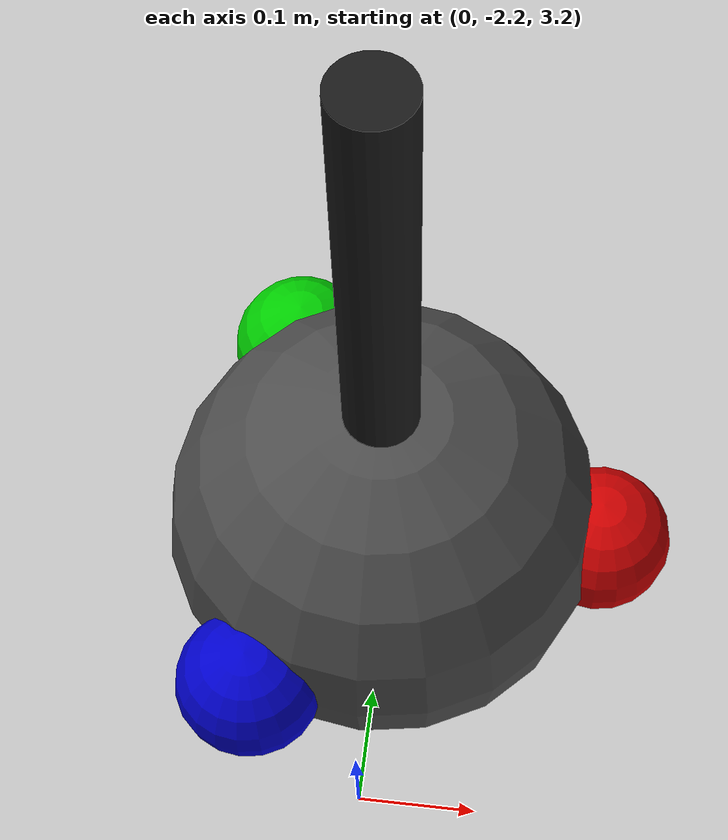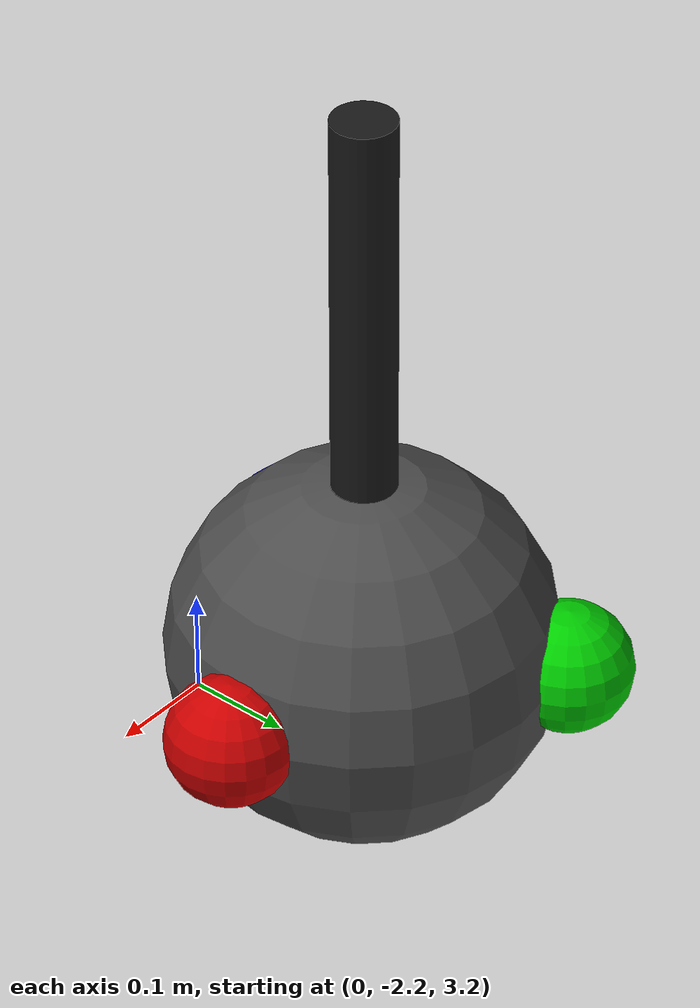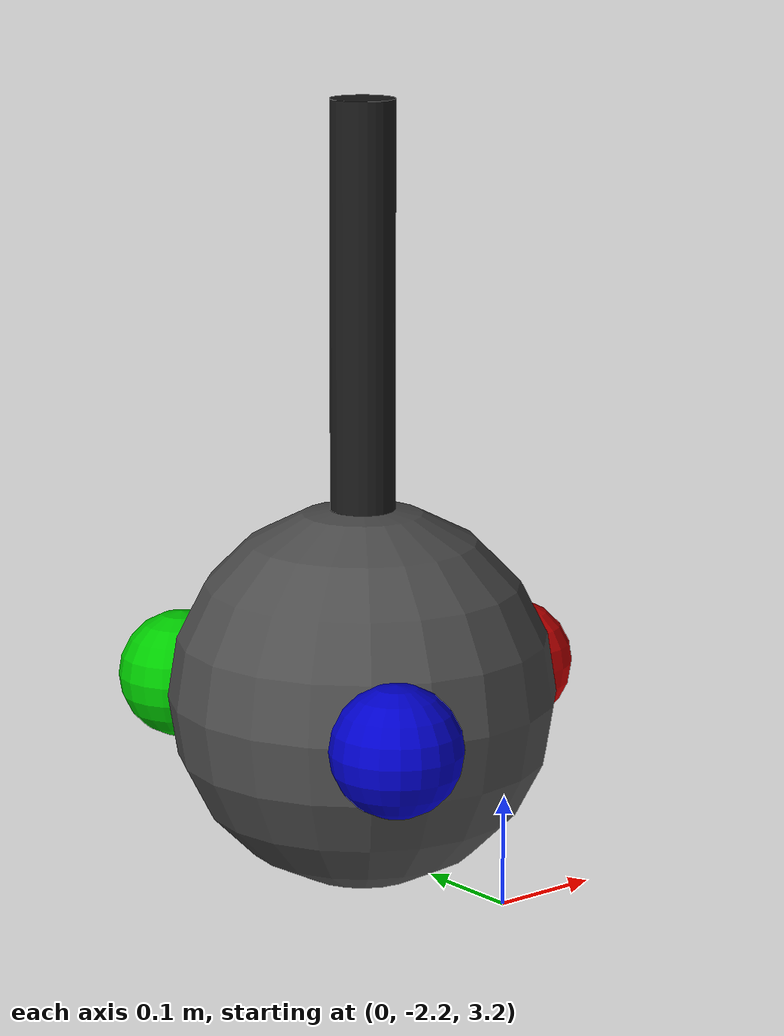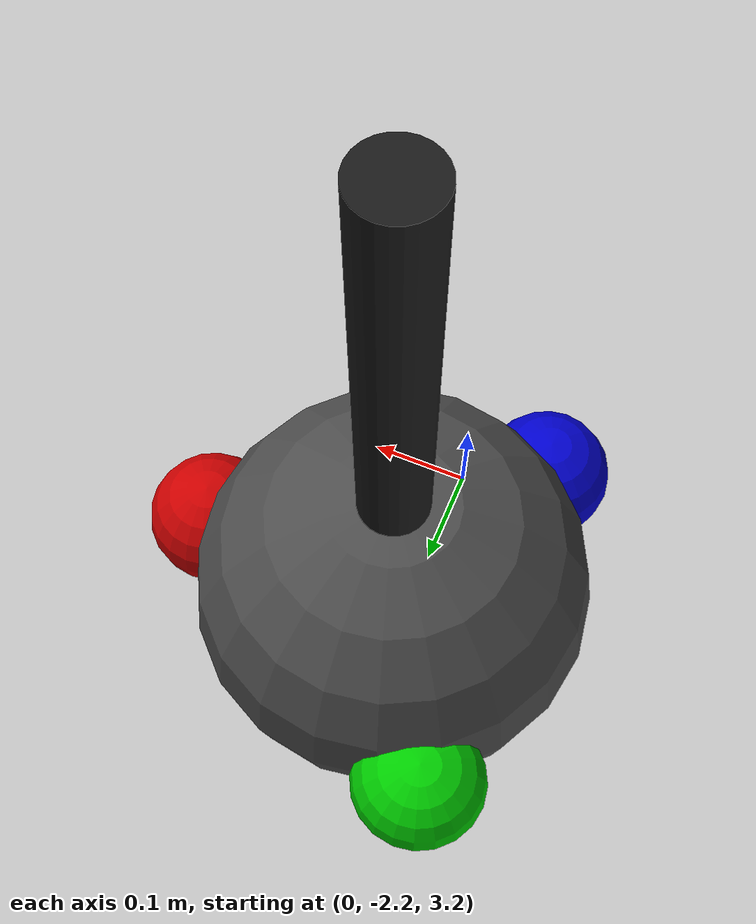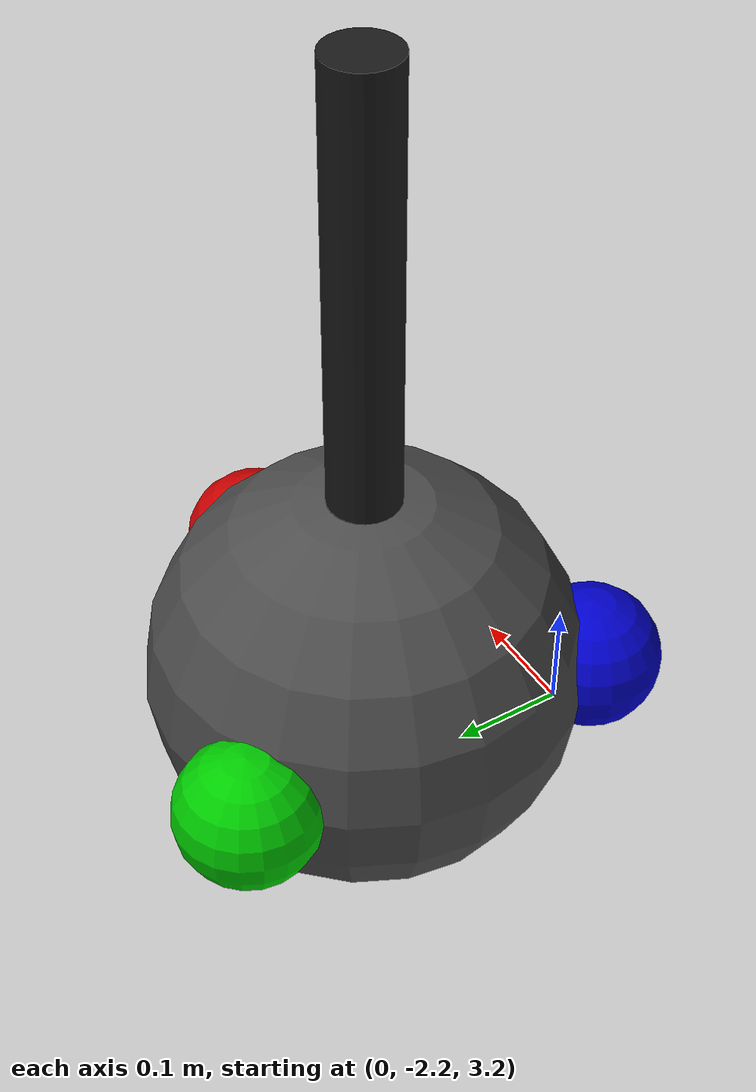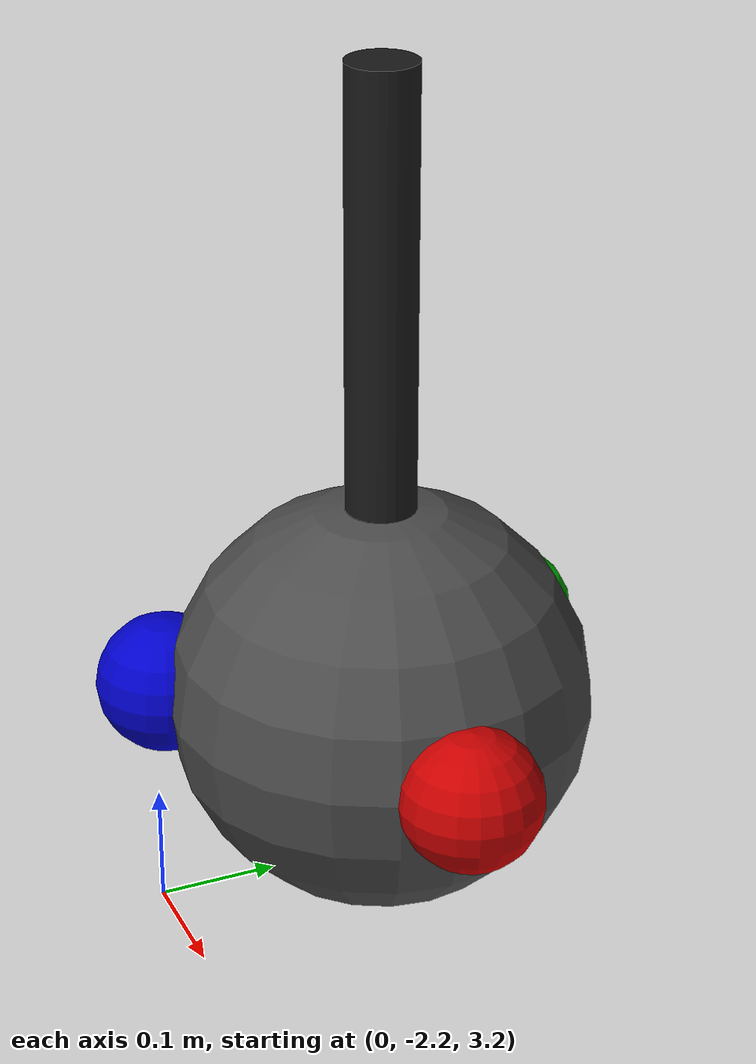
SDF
<sdf version="1.11">
 <world name="dance_party">
  <physics name="1ms" type="ignored">
   <max_step_size>0.001</max_step_size>
   <real_time_factor>1.0</real_time_factor>
  </physics>
  <plugin filename="gz-sim-physics-system" name="gz::sim::systems::Physics"/>
  <plugin filename="gz-sim-sensors-system" name="gz::sim::systems::Sensors">
   <render_engine>ogre2</render_engine>
   <background_color>0.8 0.8 0.8</background_color>
  </plugin>
  <plugin filename="gz-sim-user-commands-system" name="gz::sim::systems::UserCommands"/>
  <plugin filename="gz-sim-scene-broadcaster-system" name="gz::sim::systems::SceneBroadcaster"/>
  <scene>
   <ambient>0.15 0.15 0.18 1</ambient>
   <background>0.25 0.25 0.35 1</background>
   <shadows>true</shadows>
   <sky><time>21</time></sky>
  </scene>
  <light type="directional" name="sun">
   <pose>0 0 10 0 0 0</pose>
   <diffuse>0.2 0.2 0.25 1</diffuse>
   <specular>0.3 0.3 0.3 1</specular>
   <attenuation>
    <range>1000</range>
    <constant>1.0</constant>
    <linear>0.01</linear>
    <quadratic>0.001</quadratic>
   </attenuation>
   <direction>-0.2 0.1 -0.95</direction>
  </light>
  <model name="ground_plane">
   <static>true</static>
   <link name="link">
    <collision name="collision">
     <geometry><plane><normal>0 0 1</normal><size>100 100</size></plane></geometry>
    </collision>
    <visual name="visual">
     <geometry><plane><normal>0 0 1</normal><size>100 100</size></plane></geometry>
     <material>
      <ambient>0.8 0.8 0.8 1</ambient>
      <diffuse>0.8 0.8 0.8 1</diffuse>
      <specular>0.8 0.8 0.8 1</specular>
     </material>
    </visual>
   </link>
  </model>
  <model name="disco_light">
   <pose>0 -2.0 3.0 0 0 0</pose>
   <static>true</static>
   <link name="disco_stand">
    <pose>0 0 0.6 0 0 0</pose>
    <visual name="disco_stand_visual">
     <geometry><cylinder><radius>0.03</radius><length>0.6</length></cylinder></geometry>
     <material><ambient>0.05 0.05 0.05 1</ambient><diffuse>0.1 0.1 0.1 1</diffuse></material>
    </visual>
   </link>
   <link name="disco_ball">
    <pose>0 0 0.35 0 0 0</pose>
    <visual name="disco_ball_visual">
     <geometry><sphere><radius>0.18</radius></sphere></geometry>
     <material>
      <ambient>0.15 0.15 0.15 1</ambient>
      <diffuse>0.3 0.3 0.3 1</diffuse>
      <specular>1.0 1.0 1.0 1</specular>
     </material>
    </visual>
   </link>
   <link name="disco_red">
    <pose>0.18 0 0.35 0 0 0</pose>
    <visual name="disco_red_visual">
     <geometry><sphere><radius>0.06</radius></sphere></geometry>
     <material>
      <ambient>0.4 0.0 0.0 1</ambient>
      <diffuse>0.8 0.0 0.0 1</diffuse>
      <emissive>0.0 0.0 0.0 1</emissive>
     </material>
    </visual>
    <light name="disco_red_light" type="point">
     <diffuse>1 0 0 1</diffuse>
     <intensity>4.0</intensity>
     <attenuation><range>2.0</range></attenuation>
    </light>
   </link>
   <link name="disco_green">
    <pose>-0.09 0.16 0.35 0 0 0</pose>
    <visual name="disco_green_visual">
     <geometry><sphere><radius>0.06</radius></sphere></geometry>
     <material><ambient>0.0 0.4 0.0 1</ambient><diffuse>0.0 0.8 0.0 1</diffuse></material>
    </visual>
    <light name="disco_green_light" type="point"><diffuse>0 1 0 1</diffuse><intensity>4.0</intensity></light>
   </link>
   <link name="disco_blue">
    <pose>-0.09 -0.16 0.35 0 0 0</pose>
    <visual name="disco_blue_visual">
     <geometry><sphere><radius>0.06</radius></sphere></geometry>
     <material><ambient>0.0 0.0 0.4 1</ambient><diffuse>0.0 0.0 0.8 1</diffuse></material>
    </visual>
    <light name="disco_blue_light" type="point"><diffuse>0 0 1 1</diffuse><intensity>4.0</intensity></light>
   </link>
   <joint name="stand_to_ball" type="fixed"><parent>disco_stand</parent><child>disco_ball</child></joint>
   <joint name="ball_to_red" type="fixed"><parent>disco_ball</parent><child>disco_red</child></joint>
   <joint name="ball_to_green" type="fixed"><parent>disco_ball</parent><child>disco_green</child></joint>
   <joint name="ball_to_blue" type="fixed"><parent>disco_ball</parent><child>disco_blue</child></joint>
   <plugin filename="libgz_led_plugin.so" name="gz::sim::systems::LedPlugin">
    <led_group_name>disco_light</led_group_name>
    <led name="red_led">
     <visual_name>disco_red::disco_red_visual</visual_name>
     <light_name>disco_red::disco_red_light</light_name>
    </led>
    <led name="green_led">
     <visual_name>disco_green::disco_green_visual</visual_name>
     <light_name>disco_green::disco_green_light</light_name>
    </led>
    <led name="blue_led">
     <visual_name>disco_blue::disco_blue_visual</visual_name>
     <light_name>disco_blue::disco_blue_light</light_name>
    </led>
    <default_mode>party</default_mode>
    <mode name="rgb_cycle">
     <step><color>1 0 0 1</color><on_time>0.3</on_time><intensity>4.0</intensity></step>
     <step><color>0 1 0 1</color><on_time>0.3</on_time><intensity>4.0</intensity></step>
     <step><color>0 0 1 1</color><on_time>0.3</on_time><intensity>4.0</intensity></step>
    </mode>
    <mode name="strobe">
     <step><color>1 1 1 1</color><on_time>0.1</on_time><intensity>6.0</intensity></step>
     <step><color>0 0 0 1</color><on_time>0.1</on_time><intensity>0.0</intensity></step>
    </mode>
    <mode name="party">
     <step><color>1 0 1 1</color><on_time>0.2</on_time><intensity>5.0</intensity></step>
     <step><color>0 1 1 1</color><on_time>0.2</on_time><intensity>5.0</intensity></step>
     <step><color>1 1 0 1</color><on_time>0.2</on_time><intensity>5.0</intensity></step>
    </mode>
    <mode name="ambient_wave">
     <step><color>0.2 0.4 0.6 1</color><on_time>2.5</on_time><intensity>1.2</intensity></step>
     <step><color>0.3 0.6 0.5 1</color><on_time>2.5</on_time><intensity>1.4</intensity></step>
     <step><color>0.4 0.3 0.6 1</color><on_time>2.5</on_time><intensity>1.3</intensity></step>
     <step><color>0.25 0.45 0.35 1</color><on_time>2.5</on_time><intensity>1.1</intensity></step>
    </mode>
   </plugin>
  </model>
 </world>
</sdf>
